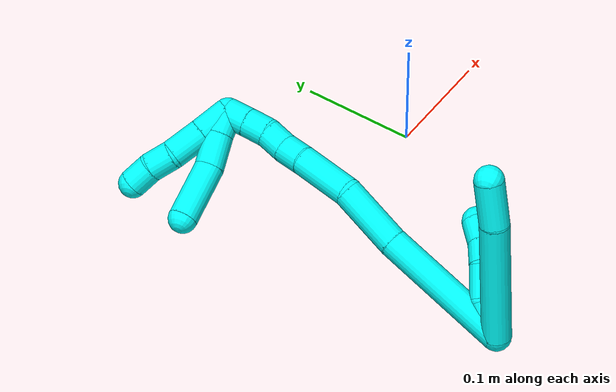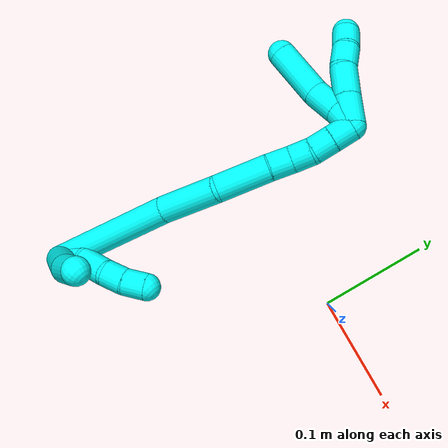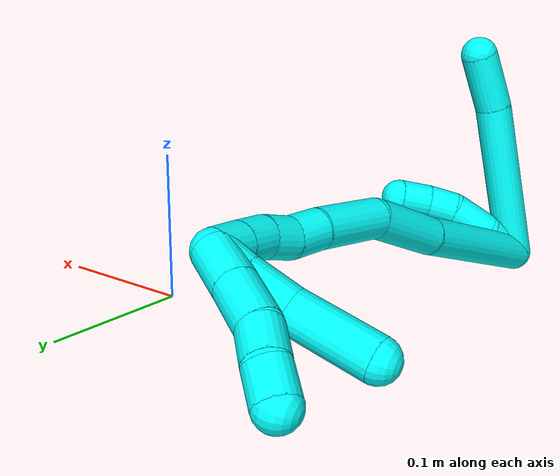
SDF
<sdf version="1.7">
 <world name="default">
  <model name="3">
   <static>0</static>
   <link name="3">
    <collision name="collision-cylinder-e_1_2_8">
     <pose>0.051303 0.003655 -0.020461 -2.96482 1.18586 -2.88006</pose>
     <geometry><cylinder><radius>0.0125</radius><length>0.110706</length></cylinder></geometry>
     <surface>
      <friction><ode><mu>1.16</mu><mu2>1.16</mu2><slip1>0</slip1><slip2>0</slip2></ode></friction>
      <contact><ode><kp>1e+06</kp><kd>1</kd><max_vel>0</max_vel><min_depth>0.001</min_depth></ode></contact>
     </surface>
    </collision>
    <visual name="visual-cylinder-e_1_2_8">
     <pose>0.051303 0.003655 -0.020461 -2.96482 1.18586 -2.88006</pose>
     <geometry><cylinder><radius>0.0125</radius><length>0.110706</length></cylinder></geometry>
     <material><ambient>0.003922 1 0.996078 1</ambient></material>
    </visual>
    <collision name="collision-cylinder-e_2_8_6">
     <pose>0.119809 0.011108 -0.049618 -2.72974 1.06676 -2.46155</pose>
     <geometry><cylinder><radius>0.0125</radius><length>0.039294</length></cylinder></geometry>
     <surface>
      <friction><ode><mu>1.16</mu><mu2>1.16</mu2><slip1>0</slip1><slip2>0</slip2></ode></friction>
      <contact><ode><kp>1e+06</kp><kd>1</kd><max_vel>0</max_vel><min_depth>0.001</min_depth></ode></contact>
     </surface>
    </collision>
    <visual name="visual-cylinder-e_2_8_6">
     <pose>0.119809 0.011108 -0.049618 -2.72974 1.06676 -2.46155</pose>
     <geometry><cylinder><radius>0.0125</radius><length>0.039294</length></cylinder></geometry>
     <material><ambient>0.003922 1 0.996078 1</ambient></material>
    </visual>
    <collision name="collision-cylinder-e_1_2_9">
     <pose>0.00728 0.008 -0.010559 -2.49325 0.502513 -1.30465</pose>
     <geometry><cylinder><radius>0.0125</radius><length>0.030232</length></cylinder></geometry>
     <surface>
      <friction><ode><mu>1.16</mu><mu2>1.16</mu2><slip1>0</slip1><slip2>0</slip2></ode></friction>
      <contact><ode><kp>1e+06</kp><kd>1</kd><max_vel>0</max_vel><min_depth>0.001</min_depth></ode></contact>
     </surface>
    </collision>
    <visual name="visual-cylinder-e_1_2_9">
     <pose>0.00728 0.008 -0.010559 -2.49325 0.502513 -1.30465</pose>
     <geometry><cylinder><radius>0.0125</radius><length>0.030232</length></cylinder></geometry>
     <material><ambient>0.003922 1 0.996078 1</ambient></material>
    </visual>
    <collision name="collision-cylinder-e_2_9_10">
     <pose>0.019937 0.019741 -0.033807 -2.85483 0.386008 -1.8691</pose>
     <geometry><cylinder><radius>0.0125</radius><length>0.028558</length></cylinder></geometry>
     <surface>
      <friction><ode><mu>1.16</mu><mu2>1.16</mu2><slip1>0</slip1><slip2>0</slip2></ode></friction>
      <contact><ode><kp>1e+06</kp><kd>1</kd><max_vel>0</max_vel><min_depth>0.001</min_depth></ode></contact>
     </surface>
    </collision>
    <visual name="visual-cylinder-e_2_9_10">
     <pose>0.019937 0.019741 -0.033807 -2.85483 0.386008 -1.8691</pose>
     <geometry><cylinder><radius>0.0125</radius><length>0.028558</length></cylinder></geometry>
     <material><ambient>0.003922 1 0.996078 1</ambient></material>
    </visual>
    <collision name="collision-cylinder-e_3_10_11">
     <pose>0.026301 0.027004 -0.055843 -2.78137 0.09863 -0.529389</pose>
     <geometry><cylinder><radius>0.0125</radius><length>0.020076</length></cylinder></geometry>
     <surface>
      <friction><ode><mu>1.16</mu><mu2>1.16</mu2><slip1>0</slip1><slip2>0</slip2></ode></friction>
      <contact><ode><kp>1e+06</kp><kd>1</kd><max_vel>0</max_vel><min_depth>0.001</min_depth></ode></contact>
     </surface>
    </collision>
    <visual name="visual-cylinder-e_3_10_11">
     <pose>0.026301 0.027004 -0.055843 -2.78137 0.09863 -0.529389</pose>
     <geometry><cylinder><radius>0.0125</radius><length>0.020076</length></cylinder></geometry>
     <material><ambient>0.003922 1 0.996078 1</ambient></material>
    </visual>
    <collision name="collision-cylinder-e_4_11_5">
     <pose>0.02794 0.036067 -0.074164 -2.58829 0.061558 -0.21603</pose>
     <geometry><cylinder><radius>0.0125</radius><length>0.021134</length></cylinder></geometry>
     <surface>
      <friction><ode><mu>1.16</mu><mu2>1.16</mu2><slip1>0</slip1><slip2>0</slip2></ode></friction>
      <contact><ode><kp>1e+06</kp><kd>1</kd><max_vel>0</max_vel><min_depth>0.001</min_depth></ode></contact>
     </surface>
    </collision>
    <visual name="visual-cylinder-e_4_11_5">
     <pose>0.02794 0.036067 -0.074164 -2.58829 0.061558 -0.21603</pose>
     <geometry><cylinder><radius>0.0125</radius><length>0.021134</length></cylinder></geometry>
     <material><ambient>0.003922 1 0.996078 1</ambient></material>
    </visual>
    <collision name="collision-cylinder-e_1_2_12">
     <pose>0.016064 0.050216 -0.021971 -1.98323 0.285086 -0.432041</pose>
     <geometry><cylinder><radius>0.0125</radius><length>0.114235</length></cylinder></geometry>
     <surface>
      <friction><ode><mu>1.16</mu><mu2>1.16</mu2><slip1>0</slip1><slip2>0</slip2></ode></friction>
      <contact><ode><kp>1e+06</kp><kd>1</kd><max_vel>0</max_vel><min_depth>0.001</min_depth></ode></contact>
     </surface>
    </collision>
    <visual name="visual-cylinder-e_1_2_12">
     <pose>0.016064 0.050216 -0.021971 -1.98323 0.285086 -0.432041</pose>
     <geometry><cylinder><radius>0.0125</radius><length>0.114235</length></cylinder></geometry>
     <material><ambient>0.003922 1 0.996078 1</ambient></material>
    </visual>
    <collision name="collision-cylinder-e_2_12_13">
     <pose>0.041456 0.12329 -0.056482 -2.07258 0.343607 -0.570236</pose>
     <geometry><cylinder><radius>0.0125</radius><length>0.055382</length></cylinder></geometry>
     <surface>
      <friction><ode><mu>1.16</mu><mu2>1.16</mu2><slip1>0</slip1><slip2>0</slip2></ode></friction>
      <contact><ode><kp>1e+06</kp><kd>1</kd><max_vel>0</max_vel><min_depth>0.001</min_depth></ode></contact>
     </surface>
    </collision>
    <visual name="visual-cylinder-e_2_12_13">
     <pose>0.041456 0.12329 -0.056482 -2.07258 0.343607 -0.570236</pose>
     <geometry><cylinder><radius>0.0125</radius><length>0.055382</length></cylinder></geometry>
     <material><ambient>0.003922 1 0.996078 1</ambient></material>
    </visual>
    <collision name="collision-cylinder-e_3_13_14">
     <pose>0.051293 0.168663 -0.078535 -1.97054 0.020776 -0.03133</pose>
     <geometry><cylinder><radius>0.0125</radius><length>0.048892</length></cylinder></geometry>
     <surface>
      <friction><ode><mu>1.16</mu><mu2>1.16</mu2><slip1>0</slip1><slip2>0</slip2></ode></friction>
      <contact><ode><kp>1e+06</kp><kd>1</kd><max_vel>0</max_vel><min_depth>0.001</min_depth></ode></contact>
     </surface>
    </collision>
    <visual name="visual-cylinder-e_3_13_14">
     <pose>0.051293 0.168663 -0.078535 -1.97054 0.020776 -0.03133</pose>
     <geometry><cylinder><radius>0.0125</radius><length>0.048892</length></cylinder></geometry>
     <material><ambient>0.003922 1 0.996078 1</ambient></material>
    </visual>
    <collision name="collision-cylinder-e_4_14_15">
     <pose>0.050733 0.200947 -0.09233 -1.9839 -0.099753 0.15247</pose>
     <geometry><cylinder><radius>0.0125</radius><length>0.021442</length></cylinder></geometry>
     <surface>
      <friction><ode><mu>1.16</mu><mu2>1.16</mu2><slip1>0</slip1><slip2>0</slip2></ode></friction>
      <contact><ode><kp>1e+06</kp><kd>1</kd><max_vel>0</max_vel><min_depth>0.001</min_depth></ode></contact>
     </surface>
    </collision>
    <visual name="visual-cylinder-e_4_14_15">
     <pose>0.050733 0.200947 -0.09233 -1.9839 -0.099753 0.15247</pose>
     <geometry><cylinder><radius>0.0125</radius><length>0.021442</length></cylinder></geometry>
     <material><ambient>0.003922 1 0.996078 1</ambient></material>
    </visual>
    <collision name="collision-cylinder-e_5_15_16">
     <pose>0.051527 0.219606 -0.100845 -2.01521 0.186917 -0.294745</pose>
     <geometry><cylinder><radius>0.0125</radius><length>0.020039</length></cylinder></geometry>
     <surface>
      <friction><ode><mu>1.16</mu><mu2>1.16</mu2><slip1>0</slip1><slip2>0</slip2></ode></friction>
      <contact><ode><kp>1e+06</kp><kd>1</kd><max_vel>0</max_vel><min_depth>0.001</min_depth></ode></contact>
     </surface>
    </collision>
    <visual name="visual-cylinder-e_5_15_16">
     <pose>0.051527 0.219606 -0.100845 -2.01521 0.186917 -0.294745</pose>
     <geometry><cylinder><radius>0.0125</radius><length>0.020039</length></cylinder></geometry>
     <material><ambient>0.003922 1 0.996078 1</ambient></material>
    </visual>
    <collision name="collision-cylinder-e_6_16_17">
     <pose>0.054032 0.238187 -0.107458 -1.81163 0.064281 -0.081962</pose>
     <geometry><cylinder><radius>0.0125</radius><length>0.020002</length></cylinder></geometry>
     <surface>
      <friction><ode><mu>1.16</mu><mu2>1.16</mu2><slip1>0</slip1><slip2>0</slip2></ode></friction>
      <contact><ode><kp>1e+06</kp><kd>1</kd><max_vel>0</max_vel><min_depth>0.001</min_depth></ode></contact>
     </surface>
    </collision>
    <visual name="visual-cylinder-e_6_16_17">
     <pose>0.054032 0.238187 -0.107458 -1.81163 0.064281 -0.081962</pose>
     <geometry><cylinder><radius>0.0125</radius><length>0.020002</length></cylinder></geometry>
     <material><ambient>0.003922 1 0.996078 1</ambient></material>
    </visual>
    <collision name="collision-cylinder-e_7_17_1">
     <pose>0.055145 0.25762 -0.112068 -1.7958 0.047115 -0.059111</pose>
     <geometry><cylinder><radius>0.0125</radius><length>0.020007</length></cylinder></geometry>
     <surface>
      <friction><ode><mu>1.16</mu><mu2>1.16</mu2><slip1>0</slip1><slip2>0</slip2></ode></friction>
      <contact><ode><kp>1e+06</kp><kd>1</kd><max_vel>0</max_vel><min_depth>0.001</min_depth></ode></contact>
     </surface>
    </collision>
    <visual name="visual-cylinder-e_7_17_1">
     <pose>0.055145 0.25762 -0.112068 -1.7958 0.047115 -0.059111</pose>
     <geometry><cylinder><radius>0.0125</radius><length>0.020007</length></cylinder></geometry>
     <material><ambient>0.003922 1 0.996078 1</ambient></material>
    </visual>
    <collision name="collision-cylinder-e_1_1_18">
     <pose>0.052476 0.268373 -0.104396 -0.101853 -0.305627 0.0157</pose>
     <geometry><cylinder><radius>0.0125</radius><length>0.020873</length></cylinder></geometry>
     <surface>
      <friction><ode><mu>1.16</mu><mu2>1.16</mu2><slip1>0</slip1><slip2>0</slip2></ode></friction>
      <contact><ode><kp>1e+06</kp><kd>1</kd><max_vel>0</max_vel><min_depth>0.001</min_depth></ode></contact>
     </surface>
    </collision>
    <visual name="visual-cylinder-e_1_1_18">
     <pose>0.052476 0.268373 -0.104396 -0.101853 -0.305627 0.0157</pose>
     <geometry><cylinder><radius>0.0125</radius><length>0.020873</length></cylinder></geometry>
     <material><ambient>0.003922 1 0.996078 1</ambient></material>
    </visual>
    <collision name="collision-cylinder-e_2_18_19">
     <pose>0.045131 0.269059 -0.080568 0.023358 -0.293121 -0.003448</pose>
     <geometry><cylinder><radius>0.0125</radius><length>0.029103</length></cylinder></geometry>
     <surface>
      <friction><ode><mu>1.16</mu><mu2>1.16</mu2><slip1>0</slip1><slip2>0</slip2></ode></friction>
      <contact><ode><kp>1e+06</kp><kd>1</kd><max_vel>0</max_vel><min_depth>0.001</min_depth></ode></contact>
     </surface>
    </collision>
    <visual name="visual-cylinder-e_2_18_19">
     <pose>0.045131 0.269059 -0.080568 0.023358 -0.293121 -0.003448</pose>
     <geometry><cylinder><radius>0.0125</radius><length>0.029103</length></cylinder></geometry>
     <material><ambient>0.003922 1 0.996078 1</ambient></material>
    </visual>
    <collision name="collision-cylinder-e_3_19_4">
     <pose>0.038425 0.271391 -0.041896 -0.106951 -0.100182 0.005367</pose>
     <geometry><cylinder><radius>0.0125</radius><length>0.050024</length></cylinder></geometry>
     <surface>
      <friction><ode><mu>1.16</mu><mu2>1.16</mu2><slip1>0</slip1><slip2>0</slip2></ode></friction>
      <contact><ode><kp>1e+06</kp><kd>1</kd><max_vel>0</max_vel><min_depth>0.001</min_depth></ode></contact>
     </surface>
    </collision>
    <visual name="visual-cylinder-e_3_19_4">
     <pose>0.038425 0.271391 -0.041896 -0.106951 -0.100182 0.005367</pose>
     <geometry><cylinder><radius>0.0125</radius><length>0.050024</length></cylinder></geometry>
     <material><ambient>0.003922 1 0.996078 1</ambient></material>
    </visual>
    <collision name="collision-cylinder-e_1_1_20">
     <pose>0.053068 0.275538 -0.102989 -0.626066 -0.180608 0.058601</pose>
     <geometry><cylinder><radius>0.0125</radius><length>0.028371</length></cylinder></geometry>
     <surface>
      <friction><ode><mu>1.16</mu><mu2>1.16</mu2><slip1>0</slip1><slip2>0</slip2></ode></friction>
      <contact><ode><kp>1e+06</kp><kd>1</kd><max_vel>0</max_vel><min_depth>0.001</min_depth></ode></contact>
     </surface>
    </collision>
    <visual name="visual-cylinder-e_1_1_20">
     <pose>0.053068 0.275538 -0.102989 -0.626066 -0.180608 0.058601</pose>
     <geometry><cylinder><radius>0.0125</radius><length>0.028371</length></cylinder></geometry>
     <material><ambient>0.003922 1 0.996078 1</ambient></material>
    </visual>
    <collision name="collision-cylinder-e_2_20_21">
     <pose>0.047878 0.292579 -0.080112 -0.653804 -0.179297 0.060938</pose>
     <geometry><cylinder><radius>0.0125</radius><length>0.029626</length></cylinder></geometry>
     <surface>
      <friction><ode><mu>1.16</mu><mu2>1.16</mu2><slip1>0</slip1><slip2>0</slip2></ode></friction>
      <contact><ode><kp>1e+06</kp><kd>1</kd><max_vel>0</max_vel><min_depth>0.001</min_depth></ode></contact>
     </surface>
    </collision>
    <visual name="visual-cylinder-e_2_20_21">
     <pose>0.047878 0.292579 -0.080112 -0.653804 -0.179297 0.060938</pose>
     <geometry><cylinder><radius>0.0125</radius><length>0.029626</length></cylinder></geometry>
     <material><ambient>0.003922 1 0.996078 1</ambient></material>
    </visual>
    <collision name="collision-cylinder-e_3_21_22">
     <pose>0.041878 0.309291 -0.062141 -0.886486 -0.320244 0.153049</pose>
     <geometry><cylinder><radius>0.0125</radius><length>0.021338</length></cylinder></geometry>
     <surface>
      <friction><ode><mu>1.16</mu><mu2>1.16</mu2><slip1>0</slip1><slip2>0</slip2></ode></friction>
      <contact><ode><kp>1e+06</kp><kd>1</kd><max_vel>0</max_vel><min_depth>0.001</min_depth></ode></contact>
     </surface>
    </collision>
    <visual name="visual-cylinder-e_3_21_22">
     <pose>0.041878 0.309291 -0.062141 -0.886486 -0.320244 0.153049</pose>
     <geometry><cylinder><radius>0.0125</radius><length>0.021338</length></cylinder></geometry>
     <material><ambient>0.003922 1 0.996078 1</ambient></material>
    </visual>
    <collision name="collision-cylinder-e_4_22_3">
     <pose>0.033637 0.323419 -0.049145 -0.761115 -0.492126 0.20028</pose>
     <geometry><cylinder><radius>0.0125</radius><length>0.020665</length></cylinder></geometry>
     <surface>
      <friction><ode><mu>1.16</mu><mu2>1.16</mu2><slip1>0</slip1><slip2>0</slip2></ode></friction>
      <contact><ode><kp>1e+06</kp><kd>1</kd><max_vel>0</max_vel><min_depth>0.001</min_depth></ode></contact>
     </surface>
    </collision>
    <visual name="visual-cylinder-e_4_22_3">
     <pose>0.033637 0.323419 -0.049145 -0.761115 -0.492126 0.20028</pose>
     <geometry><cylinder><radius>0.0125</radius><length>0.020665</length></cylinder></geometry>
     <material><ambient>0.003922 1 0.996078 1</ambient></material>
    </visual>
    <collision name="collision-sphere-3">
     <pose>0.028755 0.3297 -0.042552 0 -0 0</pose>
     <geometry><sphere><radius>0.0125</radius></sphere></geometry>
     <surface>
      <friction><ode><mu>1.16</mu><mu2>1.16</mu2><slip1>0</slip1><slip2>0</slip2></ode></friction>
      <contact><ode><kp>1e+06</kp><kd>1</kd><max_vel>0</max_vel><min_depth>0.001</min_depth></ode></contact>
     </surface>
    </collision>
    <visual name="visual-sphere-3">
     <pose>0.028755 0.3297 -0.042552 0 -0 0</pose>
     <geometry><sphere><radius>0.0125</radius></sphere></geometry>
     <material><ambient>0.003922 1 0.996078 1</ambient></material>
    </visual>
    <collision name="collision-sphere-22">
     <pose>0.038519 0.317138 -0.055739 0 -0 0</pose>
     <geometry><sphere><radius>0.0125</radius></sphere></geometry>
     <surface>
      <friction><ode><mu>1.16</mu><mu2>1.16</mu2><slip1>0</slip1><slip2>0</slip2></ode></friction>
      <contact><ode><kp>1e+06</kp><kd>1</kd><max_vel>0</max_vel><min_depth>0.001</min_depth></ode></contact>
     </surface>
    </collision>
    <visual name="visual-sphere-22">
     <pose>0.038519 0.317138 -0.055739 0 -0 0</pose>
     <geometry><sphere><radius>0.0125</radius></sphere></geometry>
     <material><ambient>0.003922 1 0.996078 1</ambient></material>
    </visual>
    <collision name="collision-sphere-21">
     <pose>0.045237 0.301444 -0.068542 0 -0 0</pose>
     <geometry><sphere><radius>0.0125</radius></sphere></geometry>
     <surface>
      <friction><ode><mu>1.16</mu><mu2>1.16</mu2><slip1>0</slip1><slip2>0</slip2></ode></friction>
      <contact><ode><kp>1e+06</kp><kd>1</kd><max_vel>0</max_vel><min_depth>0.001</min_depth></ode></contact>
     </surface>
    </collision>
    <visual name="visual-sphere-21">
     <pose>0.045237 0.301444 -0.068542 0 -0 0</pose>
     <geometry><sphere><radius>0.0125</radius></sphere></geometry>
     <material><ambient>0.003922 1 0.996078 1</ambient></material>
    </visual>
    <collision name="collision-sphere-20">
     <pose>0.05052 0.283715 -0.091681 0 -0 0</pose>
     <geometry><sphere><radius>0.0125</radius></sphere></geometry>
     <surface>
      <friction><ode><mu>1.16</mu><mu2>1.16</mu2><slip1>0</slip1><slip2>0</slip2></ode></friction>
      <contact><ode><kp>1e+06</kp><kd>1</kd><max_vel>0</max_vel><min_depth>0.001</min_depth></ode></contact>
     </surface>
    </collision>
    <visual name="visual-sphere-20">
     <pose>0.05052 0.283715 -0.091681 0 -0 0</pose>
     <geometry><sphere><radius>0.0125</radius></sphere></geometry>
     <material><ambient>0.003922 1 0.996078 1</ambient></material>
    </visual>
    <collision name="collision-sphere-4">
     <pose>0.035924 0.274047 -0.017152 0 -0 0</pose>
     <geometry><sphere><radius>0.0125</radius></sphere></geometry>
     <surface>
      <friction><ode><mu>1.16</mu><mu2>1.16</mu2><slip1>0</slip1><slip2>0</slip2></ode></friction>
      <contact><ode><kp>1e+06</kp><kd>1</kd><max_vel>0</max_vel><min_depth>0.001</min_depth></ode></contact>
     </surface>
    </collision>
    <visual name="visual-sphere-4">
     <pose>0.035924 0.274047 -0.017152 0 -0 0</pose>
     <geometry><sphere><radius>0.0125</radius></sphere></geometry>
     <material><ambient>0.003922 1 0.996078 1</ambient></material>
    </visual>
    <collision name="collision-sphere-11">
     <pose>0.02729 0.030525 -0.065191 0 -0 0</pose>
     <geometry><sphere><radius>0.0125</radius></sphere></geometry>
     <surface>
      <friction><ode><mu>1.16</mu><mu2>1.16</mu2><slip1>0</slip1><slip2>0</slip2></ode></friction>
      <contact><ode><kp>1e+06</kp><kd>1</kd><max_vel>0</max_vel><min_depth>0.001</min_depth></ode></contact>
     </surface>
    </collision>
    <visual name="visual-sphere-11">
     <pose>0.02729 0.030525 -0.065191 0 -0 0</pose>
     <geometry><sphere><radius>0.0125</radius></sphere></geometry>
     <material><ambient>0.003922 1 0.996078 1</ambient></material>
    </visual>
    <collision name="collision-sphere-10">
     <pose>0.025313 0.023483 -0.046495 0 -0 0</pose>
     <geometry><sphere><radius>0.0125</radius></sphere></geometry>
     <surface>
      <friction><ode><mu>1.16</mu><mu2>1.16</mu2><slip1>0</slip1><slip2>0</slip2></ode></friction>
      <contact><ode><kp>1e+06</kp><kd>1</kd><max_vel>0</max_vel><min_depth>0.001</min_depth></ode></contact>
     </surface>
    </collision>
    <visual name="visual-sphere-10">
     <pose>0.025313 0.023483 -0.046495 0 -0 0</pose>
     <geometry><sphere><radius>0.0125</radius></sphere></geometry>
     <material><ambient>0.003922 1 0.996078 1</ambient></material>
    </visual>
    <collision name="collision-sphere-6">
     <pose>0.137012 0.014907 -0.058313 0 -0 0</pose>
     <geometry><sphere><radius>0.0125</radius></sphere></geometry>
     <surface>
      <friction><ode><mu>1.16</mu><mu2>1.16</mu2><slip1>0</slip1><slip2>0</slip2></ode></friction>
      <contact><ode><kp>1e+06</kp><kd>1</kd><max_vel>0</max_vel><min_depth>0.001</min_depth></ode></contact>
     </surface>
    </collision>
    <visual name="visual-sphere-6">
     <pose>0.137012 0.014907 -0.058313 0 -0 0</pose>
     <geometry><sphere><radius>0.0125</radius></sphere></geometry>
     <material><ambient>0.003922 1 0.996078 1</ambient></material>
    </visual>
    <collision name="collision-sphere-9">
     <pose>0.014561 0.015999 -0.021119 0 -0 0</pose>
     <geometry><sphere><radius>0.0125</radius></sphere></geometry>
     <surface>
      <friction><ode><mu>1.16</mu><mu2>1.16</mu2><slip1>0</slip1><slip2>0</slip2></ode></friction>
      <contact><ode><kp>1e+06</kp><kd>1</kd><max_vel>0</max_vel><min_depth>0.001</min_depth></ode></contact>
     </surface>
    </collision>
    <visual name="visual-sphere-9">
     <pose>0.014561 0.015999 -0.021119 0 -0 0</pose>
     <geometry><sphere><radius>0.0125</radius></sphere></geometry>
     <material><ambient>0.003922 1 0.996078 1</ambient></material>
    </visual>
    <collision name="collision-sphere-2">
     <geometry><sphere><radius>0.0125</radius></sphere></geometry>
     <surface>
      <friction><ode><mu>1.16</mu><mu2>1.16</mu2><slip1>0</slip1><slip2>0</slip2></ode></friction>
      <contact><ode><kp>1e+06</kp><kd>1</kd><max_vel>0</max_vel><min_depth>0.001</min_depth></ode></contact>
     </surface>
    </collision>
    <visual name="visual-sphere-2">
     <geometry><sphere><radius>0.0125</radius></sphere></geometry>
     <material><ambient>0.003922 1 0.996078 1</ambient></material>
    </visual>
    <collision name="collision-sphere-19">
     <pose>0.040927 0.268734 -0.066641 0 -0 0</pose>
     <geometry><sphere><radius>0.0125</radius></sphere></geometry>
     <surface>
      <friction><ode><mu>1.16</mu><mu2>1.16</mu2><slip1>0</slip1><slip2>0</slip2></ode></friction>
      <contact><ode><kp>1e+06</kp><kd>1</kd><max_vel>0</max_vel><min_depth>0.001</min_depth></ode></contact>
     </surface>
    </collision>
    <visual name="visual-sphere-19">
     <pose>0.040927 0.268734 -0.066641 0 -0 0</pose>
     <geometry><sphere><radius>0.0125</radius></sphere></geometry>
     <material><ambient>0.003922 1 0.996078 1</ambient></material>
    </visual>
    <collision name="collision-sphere-8">
     <pose>0.102605 0.00731 -0.040922 0 -0 0</pose>
     <geometry><sphere><radius>0.0125</radius></sphere></geometry>
     <surface>
      <friction><ode><mu>1.16</mu><mu2>1.16</mu2><slip1>0</slip1><slip2>0</slip2></ode></friction>
      <contact><ode><kp>1e+06</kp><kd>1</kd><max_vel>0</max_vel><min_depth>0.001</min_depth></ode></contact>
     </surface>
    </collision>
    <visual name="visual-sphere-8">
     <pose>0.102605 0.00731 -0.040922 0 -0 0</pose>
     <geometry><sphere><radius>0.0125</radius></sphere></geometry>
     <material><ambient>0.003922 1 0.996078 1</ambient></material>
    </visual>
    <collision name="collision-sphere-5">
     <pose>0.02859 0.041609 -0.083137 0 -0 0</pose>
     <geometry><sphere><radius>0.0125</radius></sphere></geometry>
     <surface>
      <friction><ode><mu>1.16</mu><mu2>1.16</mu2><slip1>0</slip1><slip2>0</slip2></ode></friction>
      <contact><ode><kp>1e+06</kp><kd>1</kd><max_vel>0</max_vel><min_depth>0.001</min_depth></ode></contact>
     </surface>
    </collision>
    <visual name="visual-sphere-5">
     <pose>0.02859 0.041609 -0.083137 0 -0 0</pose>
     <geometry><sphere><radius>0.0125</radius></sphere></geometry>
     <material><ambient>0.003922 1 0.996078 1</ambient></material>
    </visual>
    <collision name="collision-sphere-12">
     <pose>0.032127 0.100432 -0.043942 0 -0 0</pose>
     <geometry><sphere><radius>0.0125</radius></sphere></geometry>
     <surface>
      <friction><ode><mu>1.16</mu><mu2>1.16</mu2><slip1>0</slip1><slip2>0</slip2></ode></friction>
      <contact><ode><kp>1e+06</kp><kd>1</kd><max_vel>0</max_vel><min_depth>0.001</min_depth></ode></contact>
     </surface>
    </collision>
    <visual name="visual-sphere-12">
     <pose>0.032127 0.100432 -0.043942 0 -0 0</pose>
     <geometry><sphere><radius>0.0125</radius></sphere></geometry>
     <material><ambient>0.003922 1 0.996078 1</ambient></material>
    </visual>
    <collision name="collision-sphere-13">
     <pose>0.050785 0.146149 -0.069023 0 -0 0</pose>
     <geometry><sphere><radius>0.0125</radius></sphere></geometry>
     <surface>
      <friction><ode><mu>1.16</mu><mu2>1.16</mu2><slip1>0</slip1><slip2>0</slip2></ode></friction>
      <contact><ode><kp>1e+06</kp><kd>1</kd><max_vel>0</max_vel><min_depth>0.001</min_depth></ode></contact>
     </surface>
    </collision>
    <visual name="visual-sphere-13">
     <pose>0.050785 0.146149 -0.069023 0 -0 0</pose>
     <geometry><sphere><radius>0.0125</radius></sphere></geometry>
     <material><ambient>0.003922 1 0.996078 1</ambient></material>
    </visual>
    <collision name="collision-sphere-14">
     <pose>0.051801 0.191177 -0.088047 0 -0 0</pose>
     <geometry><sphere><radius>0.0125</radius></sphere></geometry>
     <surface>
      <friction><ode><mu>1.16</mu><mu2>1.16</mu2><slip1>0</slip1><slip2>0</slip2></ode></friction>
      <contact><ode><kp>1e+06</kp><kd>1</kd><max_vel>0</max_vel><min_depth>0.001</min_depth></ode></contact>
     </surface>
    </collision>
    <visual name="visual-sphere-14">
     <pose>0.051801 0.191177 -0.088047 0 -0 0</pose>
     <geometry><sphere><radius>0.0125</radius></sphere></geometry>
     <material><ambient>0.003922 1 0.996078 1</ambient></material>
    </visual>
    <collision name="collision-sphere-15">
     <pose>0.049665 0.210717 -0.096612 0 -0 0</pose>
     <geometry><sphere><radius>0.0125</radius></sphere></geometry>
     <surface>
      <friction><ode><mu>1.16</mu><mu2>1.16</mu2><slip1>0</slip1><slip2>0</slip2></ode></friction>
      <contact><ode><kp>1e+06</kp><kd>1</kd><max_vel>0</max_vel><min_depth>0.001</min_depth></ode></contact>
     </surface>
    </collision>
    <visual name="visual-sphere-15">
     <pose>0.049665 0.210717 -0.096612 0 -0 0</pose>
     <geometry><sphere><radius>0.0125</radius></sphere></geometry>
     <material><ambient>0.003922 1 0.996078 1</ambient></material>
    </visual>
    <collision name="collision-sphere-16">
     <pose>0.053389 0.228495 -0.105078 0 -0 0</pose>
     <geometry><sphere><radius>0.0125</radius></sphere></geometry>
     <surface>
      <friction><ode><mu>1.16</mu><mu2>1.16</mu2><slip1>0</slip1><slip2>0</slip2></ode></friction>
      <contact><ode><kp>1e+06</kp><kd>1</kd><max_vel>0</max_vel><min_depth>0.001</min_depth></ode></contact>
     </surface>
    </collision>
    <visual name="visual-sphere-16">
     <pose>0.053389 0.228495 -0.105078 0 -0 0</pose>
     <geometry><sphere><radius>0.0125</radius></sphere></geometry>
     <material><ambient>0.003922 1 0.996078 1</ambient></material>
    </visual>
    <collision name="collision-sphere-17">
     <pose>0.054674 0.24788 -0.109839 0 -0 0</pose>
     <geometry><sphere><radius>0.0125</radius></sphere></geometry>
     <surface>
      <friction><ode><mu>1.16</mu><mu2>1.16</mu2><slip1>0</slip1><slip2>0</slip2></ode></friction>
      <contact><ode><kp>1e+06</kp><kd>1</kd><max_vel>0</max_vel><min_depth>0.001</min_depth></ode></contact>
     </surface>
    </collision>
    <visual name="visual-sphere-17">
     <pose>0.054674 0.24788 -0.109839 0 -0 0</pose>
     <geometry><sphere><radius>0.0125</radius></sphere></geometry>
     <material><ambient>0.003922 1 0.996078 1</ambient></material>
    </visual>
    <collision name="collision-sphere-1">
     <pose>0.055616 0.267361 -0.114297 0 -0 0</pose>
     <geometry><sphere><radius>0.0125</radius></sphere></geometry>
     <surface>
      <friction><ode><mu>1.16</mu><mu2>1.16</mu2><slip1>0</slip1><slip2>0</slip2></ode></friction>
      <contact><ode><kp>1e+06</kp><kd>1</kd><max_vel>0</max_vel><min_depth>0.001</min_depth></ode></contact>
     </surface>
    </collision>
    <visual name="visual-sphere-1">
     <pose>0.055616 0.267361 -0.114297 0 -0 0</pose>
     <geometry><sphere><radius>0.0125</radius></sphere></geometry>
     <material><ambient>0.003922 1 0.996078 1</ambient></material>
    </visual>
    <collision name="collision-sphere-18">
     <pose>0.049336 0.269385 -0.094495 0 -0 0</pose>
     <geometry><sphere><radius>0.0125</radius></sphere></geometry>
     <surface>
      <friction><ode><mu>1.16</mu><mu2>1.16</mu2><slip1>0</slip1><slip2>0</slip2></ode></friction>
      <contact><ode><kp>1e+06</kp><kd>1</kd><max_vel>0</max_vel><min_depth>0.001</min_depth></ode></contact>
     </surface>
    </collision>
    <visual name="visual-sphere-18">
     <pose>0.049336 0.269385 -0.094495 0 -0 0</pose>
     <geometry><sphere><radius>0.0125</radius></sphere></geometry>
     <material><ambient>0.003922 1 0.996078 1</ambient></material>
    </visual>
    <inertial>
     <pose>0.042776 0.132222 -0.053752 0 -0 0</pose>
     <mass>0.75</mass>
     <inertia><ixx>6e-05</ixx><ixy>0</ixy><ixz>0</ixz><iyy>5.4e-05</iyy><iyz>0</iyz><izz>-0.000325</izz></inertia>
    </inertial>
   </link>
   <pose>-0.16152 -0.192371 0.015628 -2.94574 -1.348 -3.09134</pose>
  </model>
 </world>
</sdf>
